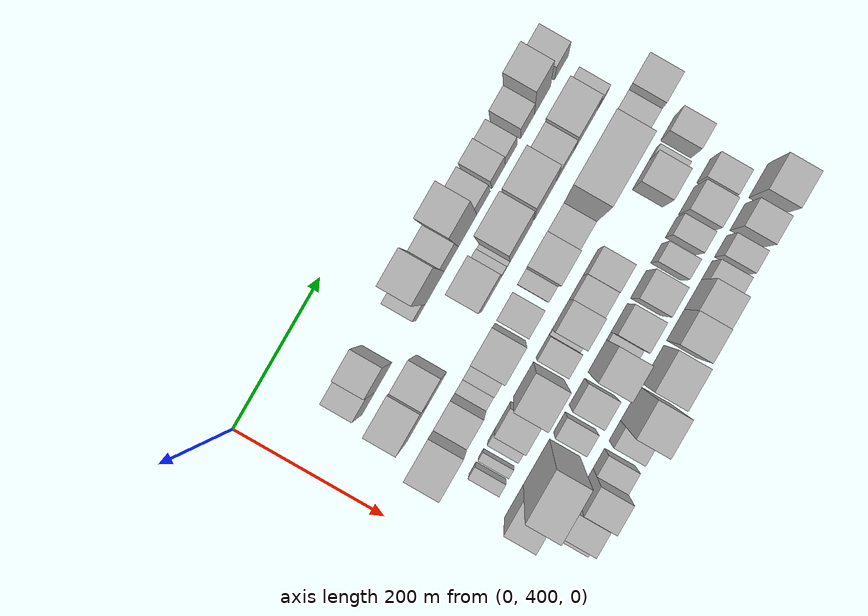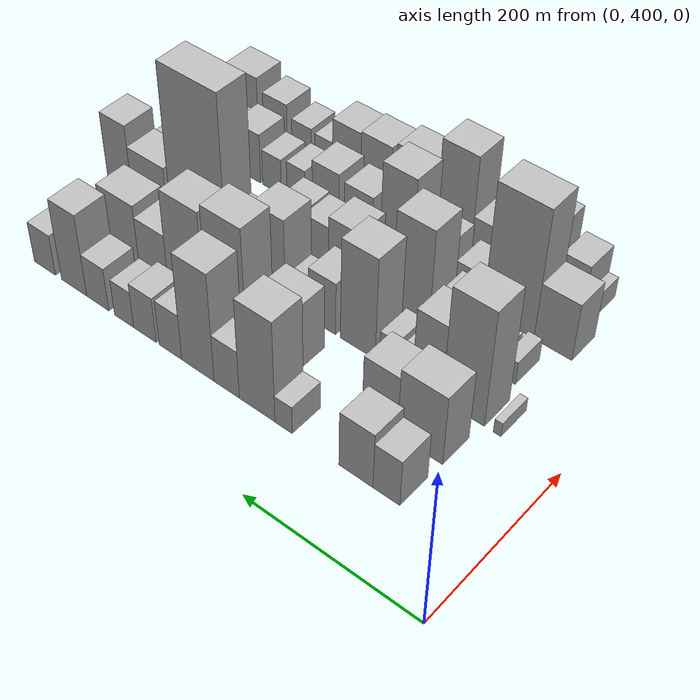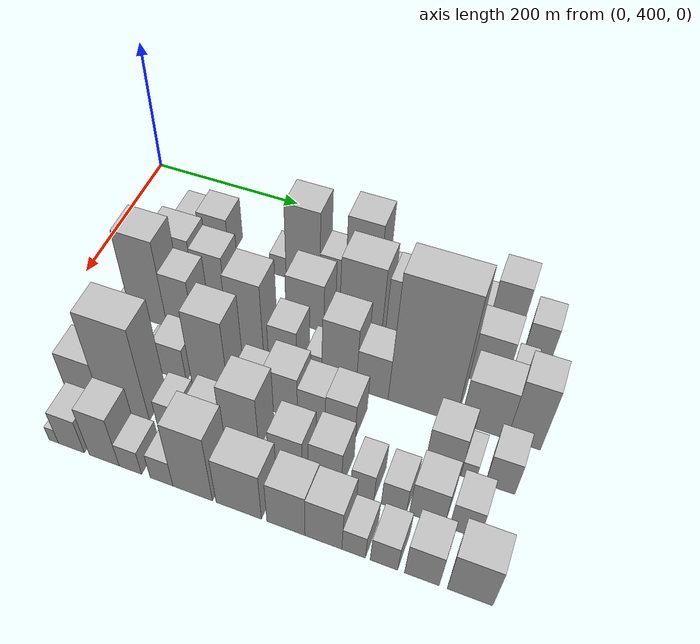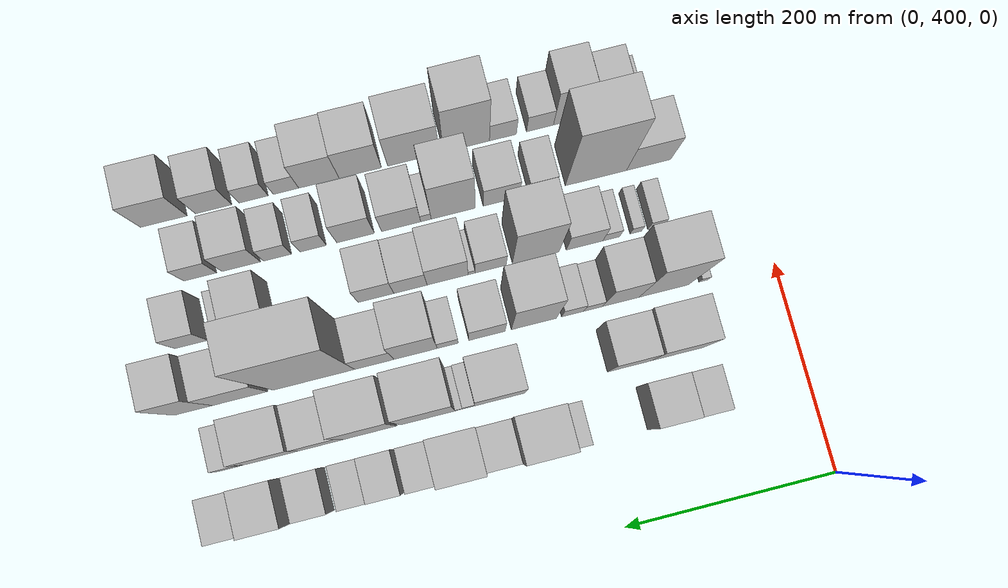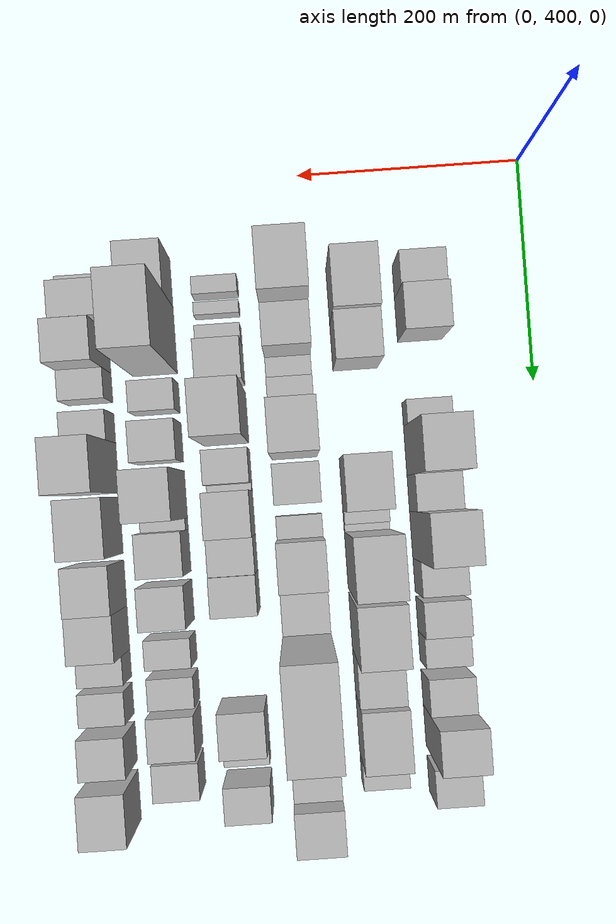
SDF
<sdf version="1.6">
 <world name="default">
  <model name="building_41">
   <static>1</static>
   <pose>100.0000 502.7373 0 0.000000 0.000000 0.000000</pose>
   <link name="link">
    <pose>0 0 30.00 0 0 0</pose>
    <collision name="collision"><geometry><box><size>40.0000 30.0292 60.0000</size></box></geometry></collision>
    <visual name="visual">
     <cast_shadows>0</cast_shadows>
     <geometry><box><size>40.0000 30.0292 60.0000</size></box></geometry>
     <material>
      <script>
       <uri>model://HANNAS_wall/materials/scripts</uri>
       <uri>model://HANNAS_wall/materials/textures</uri>
       <name>vrc/HANNAS_wall</name>
      </script>
     </material>
    </visual>
   </link>
  </model>
  <model name="building_42">
   <static>1</static>
   <pose>100.0000 537.3404 0 0.000000 0.000000 0.000000</pose>
   <link name="link">
    <pose>0 0 36.00 0 0 0</pose>
    <collision name="collision"><geometry><box><size>40.0000 39.1769 72.0000</size></box></geometry></collision>
    <visual name="visual">
     <cast_shadows>0</cast_shadows>
     <geometry><box><size>40.0000 39.1769 72.0000</size></box></geometry>
     <material>
      <script>
       <uri>model://HANNAS_wall/materials/scripts</uri>
       <uri>model://HANNAS_wall/materials/textures</uri>
       <name>vrc/HANNAS_wall</name>
      </script>
     </material>
    </visual>
   </link>
  </model>
  <model name="building_43">
   <static>1</static>
   <pose>100.0000 622.6540 0 0.000000 0.000000 0.000000</pose>
   <link name="link">
    <pose>0 0 18.00 0 0 0</pose>
    <collision name="collision"><geometry><box><size>40.0000 21.1501 36.0000</size></box></geometry></collision>
    <visual name="visual">
     <cast_shadows>0</cast_shadows>
     <geometry><box><size>40.0000 21.1501 36.0000</size></box></geometry>
     <material>
      <script>
       <uri>model://HANNAS_wall/materials/scripts</uri>
       <uri>model://HANNAS_wall/materials/textures</uri>
       <name>vrc/HANNAS_wall</name>
      </script>
     </material>
    </visual>
   </link>
  </model>
  <model name="building_44">
   <static>1</static>
   <pose>100.0000 655.3637 0 0.000000 0.000000 0.000000</pose>
   <link name="link">
    <pose>0 0 66.00 0 0 0</pose>
    <collision name="collision"><geometry><box><size>40.0000 44.2693 132.0000</size></box></geometry></collision>
    <visual name="visual">
     <cast_shadows>0</cast_shadows>
     <geometry><box><size>40.0000 44.2693 132.0000</size></box></geometry>
     <material>
      <script>
       <uri>model://HANNAS_wall/materials/scripts</uri>
       <uri>model://HANNAS_wall/materials/textures</uri>
       <name>vrc/HANNAS_wall</name>
      </script>
     </material>
    </visual>
   </link>
  </model>
  <model name="building_45">
   <static>1</static>
   <pose>100.0000 693.5913 0 0.000000 0.000000 0.000000</pose>
   <link name="link">
    <pose>0 0 31.50 0 0 0</pose>
    <collision name="collision"><geometry><box><size>40.0000 32.1860 63.0000</size></box></geometry></collision>
    <visual name="visual">
     <cast_shadows>0</cast_shadows>
     <geometry><box><size>40.0000 32.1860 63.0000</size></box></geometry>
     <material>
      <script>
       <uri>model://HANNAS_wall/materials/scripts</uri>
       <uri>model://HANNAS_wall/materials/textures</uri>
       <name>vrc/HANNAS_wall</name>
      </script>
     </material>
    </visual>
   </link>
  </model>
  <model name="building_46">
   <static>1</static>
   <pose>100.0000 730.8806 0 0.000000 0.000000 0.000000</pose>
   <link name="link">
    <pose>0 0 70.50 0 0 0</pose>
    <collision name="collision"><geometry><box><size>40.0000 42.3927 141.0000</size></box></geometry></collision>
    <visual name="visual">
     <cast_shadows>0</cast_shadows>
     <geometry><box><size>40.0000 42.3927 141.0000</size></box></geometry>
     <material>
      <script>
       <uri>model://HANNAS_wall/materials/scripts</uri>
       <uri>model://HANNAS_wall/materials/textures</uri>
       <name>vrc/HANNAS_wall</name>
      </script>
     </material>
    </visual>
   </link>
  </model>
  <model name="building_47">
   <static>1</static>
   <pose>100.0000 767.2202 0 0.000000 0.000000 0.000000</pose>
   <link name="link">
    <pose>0 0 30.00 0 0 0</pose>
    <collision name="collision"><geometry><box><size>40.0000 30.2864 60.0000</size></box></geometry></collision>
    <visual name="visual">
     <cast_shadows>0</cast_shadows>
     <geometry><box><size>40.0000 30.2864 60.0000</size></box></geometry>
     <material>
      <script>
       <uri>model://HANNAS_wall/materials/scripts</uri>
       <uri>model://HANNAS_wall/materials/textures</uri>
       <name>vrc/HANNAS_wall</name>
      </script>
     </material>
    </visual>
   </link>
  </model>
  <model name="building_48">
   <static>1</static>
   <pose>100.0000 801.8591 0 0.000000 0.000000 0.000000</pose>
   <link name="link">
    <pose>0 0 30.00 0 0 0</pose>
    <collision name="collision"><geometry><box><size>40.0000 30.9913 60.0000</size></box></geometry></collision>
    <visual name="visual">
     <cast_shadows>0</cast_shadows>
     <geometry><box><size>40.0000 30.9913 60.0000</size></box></geometry>
     <material>
      <script>
       <uri>model://HANNAS_wall/materials/scripts</uri>
       <uri>model://HANNAS_wall/materials/textures</uri>
       <name>vrc/HANNAS_wall</name>
      </script>
     </material>
    </visual>
   </link>
  </model>
  <model name="building_49">
   <static>1</static>
   <pose>100.0000 830.7806 0 0.000000 0.000000 0.000000</pose>
   <link name="link">
    <pose>0 0 24.00 0 0 0</pose>
    <collision name="collision"><geometry><box><size>40.0000 26.8517 48.0000</size></box></geometry></collision>
    <visual name="visual">
     <cast_shadows>0</cast_shadows>
     <geometry><box><size>40.0000 26.8517 48.0000</size></box></geometry>
     <material>
      <script>
       <uri>model://HANNAS_wall/materials/scripts</uri>
       <uri>model://HANNAS_wall/materials/textures</uri>
       <name>vrc/HANNAS_wall</name>
      </script>
     </material>
    </visual>
   </link>
  </model>
  <model name="building_50">
   <static>1</static>
   <pose>100.0000 868.0467 0 0.000000 0.000000 0.000000</pose>
   <link name="link">
    <pose>0 0 28.50 0 0 0</pose>
    <collision name="collision"><geometry><box><size>40.0000 31.6805 57.0000</size></box></geometry></collision>
    <visual name="visual">
     <cast_shadows>0</cast_shadows>
     <geometry><box><size>40.0000 31.6805 57.0000</size></box></geometry>
     <material>
      <script>
       <uri>model://HANNAS_wall/materials/scripts</uri>
       <uri>model://HANNAS_wall/materials/textures</uri>
       <name>vrc/HANNAS_wall</name>
      </script>
     </material>
    </visual>
   </link>
  </model>
  <model name="building_51">
   <static>1</static>
   <pose>100.0000 902.3525 0 0.000000 0.000000 0.000000</pose>
   <link name="link">
    <pose>0 0 54.00 0 0 0</pose>
    <collision name="collision"><geometry><box><size>40.0000 36.9312 108.0000</size></box></geometry></collision>
    <visual name="visual">
     <cast_shadows>0</cast_shadows>
     <geometry><box><size>40.0000 36.9312 108.0000</size></box></geometry>
     <material>
      <script>
       <uri>model://HANNAS_wall/materials/scripts</uri>
       <uri>model://HANNAS_wall/materials/textures</uri>
       <name>vrc/HANNAS_wall</name>
      </script>
     </material>
    </visual>
   </link>
  </model>
  <model name="building_52">
   <static>1</static>
   <pose>100.0000 945.7392 0 0.000000 0.000000 0.000000</pose>
   <link name="link">
    <pose>0 0 27.00 0 0 0</pose>
    <collision name="collision"><geometry><box><size>40.0000 31.8421 54.0000</size></box></geometry></collision>
    <visual name="visual">
     <cast_shadows>0</cast_shadows>
     <geometry><box><size>40.0000 31.8421 54.0000</size></box></geometry>
     <material>
      <script>
       <uri>model://HANNAS_wall/materials/scripts</uri>
       <uri>model://HANNAS_wall/materials/textures</uri>
       <name>vrc/HANNAS_wall</name>
      </script>
     </material>
    </visual>
   </link>
  </model>
  <model name="building_91">
   <static>1</static>
   <pose>160.0000 511.8991 0 0.000000 0.000000 0.000000</pose>
   <link name="link">
    <pose>0 0 45.00 0 0 0</pose>
    <collision name="collision"><geometry><box><size>40.0000 51.1028 90.0000</size></box></geometry></collision>
    <visual name="visual">
     <cast_shadows>0</cast_shadows>
     <geometry><box><size>40.0000 51.1028 90.0000</size></box></geometry>
     <material>
      <script>
       <uri>model://HANNAS_wall/materials/scripts</uri>
       <uri>model://HANNAS_wall/materials/textures</uri>
       <name>vrc/HANNAS_wall</name>
      </script>
     </material>
    </visual>
   </link>
  </model>
  <model name="building_92">
   <static>1</static>
   <pose>160.0000 558.0817 0 0.000000 0.000000 0.000000</pose>
   <link name="link">
    <pose>0 0 39.00 0 0 0</pose>
    <collision name="collision"><geometry><box><size>40.0000 41.2624 78.0000</size></box></geometry></collision>
    <visual name="visual">
     <cast_shadows>0</cast_shadows>
     <geometry><box><size>40.0000 41.2624 78.0000</size></box></geometry>
     <material>
      <script>
       <uri>model://HANNAS_wall/materials/scripts</uri>
       <uri>model://HANNAS_wall/materials/textures</uri>
       <name>vrc/HANNAS_wall</name>
      </script>
     </material>
    </visual>
   </link>
  </model>
  <model name="building_93">
   <static>1</static>
   <pose>160.0000 681.7289 0 0.000000 0.000000 0.000000</pose>
   <link name="link">
    <pose>0 0 42.00 0 0 0</pose>
    <collision name="collision"><geometry><box><size>40.0000 47.3440 84.0000</size></box></geometry></collision>
    <visual name="visual">
     <cast_shadows>0</cast_shadows>
     <geometry><box><size>40.0000 47.3440 84.0000</size></box></geometry>
     <material>
      <script>
       <uri>model://HANNAS_wall/materials/scripts</uri>
       <uri>model://HANNAS_wall/materials/textures</uri>
       <name>vrc/HANNAS_wall</name>
      </script>
     </material>
    </visual>
   </link>
  </model>
  <model name="building_94">
   <static>1</static>
   <pose>160.0000 711.2848 0 0.000000 0.000000 0.000000</pose>
   <link name="link">
    <pose>0 0 12.00 0 0 0</pose>
    <collision name="collision"><geometry><box><size>40.0000 11.7679 24.0000</size></box></geometry></collision>
    <visual name="visual">
     <cast_shadows>0</cast_shadows>
     <geometry><box><size>40.0000 11.7679 24.0000</size></box></geometry>
     <material>
      <script>
       <uri>model://HANNAS_wall/materials/scripts</uri>
       <uri>model://HANNAS_wall/materials/textures</uri>
       <name>vrc/HANNAS_wall</name>
      </script>
     </material>
    </visual>
   </link>
  </model>
  <model name="building_95">
   <static>1</static>
   <pose>160.0000 720.5890 0 0.000000 0.000000 0.000000</pose>
   <link name="link">
    <pose>0 0 7.50 0 0 0</pose>
    <collision name="collision"><geometry><box><size>40.0000 6.8404 15.0000</size></box></geometry></collision>
    <visual name="visual">
     <cast_shadows>0</cast_shadows>
     <geometry><box><size>40.0000 6.8404 15.0000</size></box></geometry>
     <material>
      <script>
       <uri>model://HANNAS_wall/materials/scripts</uri>
       <uri>model://HANNAS_wall/materials/textures</uri>
       <name>vrc/HANNAS_wall</name>
      </script>
     </material>
    </visual>
   </link>
  </model>
  <model name="building_96">
   <static>1</static>
   <pose>160.0000 749.4147 0 0.000000 0.000000 0.000000</pose>
   <link name="link">
    <pose>0 0 72.00 0 0 0</pose>
    <collision name="collision"><geometry><box><size>40.0000 50.8111 144.0000</size></box></geometry></collision>
    <visual name="visual">
     <cast_shadows>0</cast_shadows>
     <geometry><box><size>40.0000 50.8111 144.0000</size></box></geometry>
     <material>
      <script>
       <uri>model://HANNAS_wall/materials/scripts</uri>
       <uri>model://HANNAS_wall/materials/textures</uri>
       <name>vrc/HANNAS_wall</name>
      </script>
     </material>
    </visual>
   </link>
  </model>
  <model name="building_97">
   <static>1</static>
   <pose>160.0000 803.7815 0 0.000000 0.000000 0.000000</pose>
   <link name="link">
    <pose>0 0 66.00 0 0 0</pose>
    <collision name="collision"><geometry><box><size>40.0000 49.9226 132.0000</size></box></geometry></collision>
    <visual name="visual">
     <cast_shadows>0</cast_shadows>
     <geometry><box><size>40.0000 49.9226 132.0000</size></box></geometry>
     <material>
      <script>
       <uri>model://HANNAS_wall/materials/scripts</uri>
       <uri>model://HANNAS_wall/materials/textures</uri>
       <name>vrc/HANNAS_wall</name>
      </script>
     </material>
    </visual>
   </link>
  </model>
  <model name="building_98">
   <static>1</static>
   <pose>160.0000 849.2583 0 0.000000 0.000000 0.000000</pose>
   <link name="link">
    <pose>0 0 36.00 0 0 0</pose>
    <collision name="collision"><geometry><box><size>40.0000 41.0309 72.0000</size></box></geometry></collision>
    <visual name="visual">
     <cast_shadows>0</cast_shadows>
     <geometry><box><size>40.0000 41.0309 72.0000</size></box></geometry>
     <material>
      <script>
       <uri>model://HANNAS_wall/materials/scripts</uri>
       <uri>model://HANNAS_wall/materials/textures</uri>
       <name>vrc/HANNAS_wall</name>
      </script>
     </material>
    </visual>
   </link>
  </model>
  <model name="building_99">
   <static>1</static>
   <pose>160.0000 895.5063 0 0.000000 0.000000 0.000000</pose>
   <link name="link">
    <pose>0 0 43.50 0 0 0</pose>
    <collision name="collision"><geometry><box><size>40.0000 51.4651 87.0000</size></box></geometry></collision>
    <visual name="visual">
     <cast_shadows>0</cast_shadows>
     <geometry><box><size>40.0000 51.4651 87.0000</size></box></geometry>
     <material>
      <script>
       <uri>model://HANNAS_wall/materials/scripts</uri>
       <uri>model://HANNAS_wall/materials/textures</uri>
       <name>vrc/HANNAS_wall</name>
      </script>
     </material>
    </visual>
   </link>
  </model>
  <model name="building_100">
   <static>1</static>
   <pose>160.0000 935.5492 0 0.000000 0.000000 0.000000</pose>
   <link name="link">
    <pose>0 0 19.50 0 0 0</pose>
    <collision name="collision"><geometry><box><size>40.0000 22.6207 39.0000</size></box></geometry></collision>
    <visual name="visual">
     <cast_shadows>0</cast_shadows>
     <geometry><box><size>40.0000 22.6207 39.0000</size></box></geometry>
     <material>
      <script>
       <uri>model://HANNAS_wall/materials/scripts</uri>
       <uri>model://HANNAS_wall/materials/textures</uri>
       <name>vrc/HANNAS_wall</name>
      </script>
     </material>
    </visual>
   </link>
  </model>
  <model name="building_131">
   <static>1</static>
   <pose>220.0000 469.3187 0 0.000000 0.000000 0.000000</pose>
   <link name="link">
    <pose>0 0 9.00 0 0 0</pose>
    <collision name="collision"><geometry><box><size>40.0000 8.6902 18.0000</size></box></geometry></collision>
    <visual name="visual">
     <cast_shadows>0</cast_shadows>
     <geometry><box><size>40.0000 8.6902 18.0000</size></box></geometry>
     <material>
      <script>
       <uri>model://HANNAS_wall/materials/scripts</uri>
       <uri>model://HANNAS_wall/materials/textures</uri>
       <name>vrc/HANNAS_wall</name>
      </script>
     </material>
    </visual>
   </link>
  </model>
  <model name="building_132">
   <static>1</static>
   <pose>220.0000 507.6640 0 0.000000 0.000000 0.000000</pose>
   <link name="link">
    <pose>0 0 75.00 0 0 0</pose>
    <collision name="collision"><geometry><box><size>40.0000 48.0005 150.0000</size></box></geometry></collision>
    <visual name="visual">
     <cast_shadows>0</cast_shadows>
     <geometry><box><size>40.0000 48.0005 150.0000</size></box></geometry>
     <material>
      <script>
       <uri>model://HANNAS_wall/materials/scripts</uri>
       <uri>model://HANNAS_wall/materials/textures</uri>
       <name>vrc/HANNAS_wall</name>
      </script>
     </material>
    </visual>
   </link>
  </model>
  <model name="building_133">
   <static>1</static>
   <pose>220.0000 549.2574 0 0.000000 0.000000 0.000000</pose>
   <link name="link">
    <pose>0 0 49.50 0 0 0</pose>
    <collision name="collision"><geometry><box><size>40.0000 35.1864 99.0000</size></box></geometry></collision>
    <visual name="visual">
     <cast_shadows>0</cast_shadows>
     <geometry><box><size>40.0000 35.1864 99.0000</size></box></geometry>
     <material>
      <script>
       <uri>model://HANNAS_wall/materials/scripts</uri>
       <uri>model://HANNAS_wall/materials/textures</uri>
       <name>vrc/HANNAS_wall</name>
      </script>
     </material>
    </visual>
   </link>
  </model>
  <model name="building_134">
   <static>1</static>
   <pose>220.0000 576.0429 0 0.000000 0.000000 0.000000</pose>
   <link name="link">
    <pose>0 0 16.50 0 0 0</pose>
    <collision name="collision"><geometry><box><size>40.0000 18.3845 33.0000</size></box></geometry></collision>
    <visual name="visual">
     <cast_shadows>0</cast_shadows>
     <geometry><box><size>40.0000 18.3845 33.0000</size></box></geometry>
     <material>
      <script>
       <uri>model://HANNAS_wall/materials/scripts</uri>
       <uri>model://HANNAS_wall/materials/textures</uri>
       <name>vrc/HANNAS_wall</name>
      </script>
     </material>
    </visual>
   </link>
  </model>
  <model name="building_135">
   <static>1</static>
   <pose>220.0000 595.9459 0 0.000000 0.000000 0.000000</pose>
   <link name="link">
    <pose>0 0 21.00 0 0 0</pose>
    <collision name="collision"><geometry><box><size>40.0000 21.4215 42.0000</size></box></geometry></collision>
    <visual name="visual">
     <cast_shadows>0</cast_shadows>
     <geometry><box><size>40.0000 21.4215 42.0000</size></box></geometry>
     <material>
      <script>
       <uri>model://HANNAS_wall/materials/scripts</uri>
       <uri>model://HANNAS_wall/materials/textures</uri>
       <name>vrc/HANNAS_wall</name>
      </script>
     </material>
    </visual>
   </link>
  </model>
  <model name="building_136">
   <static>1</static>
   <pose>220.0000 633.3395 0 0.000000 0.000000 0.000000</pose>
   <link name="link">
    <pose>0 0 66.00 0 0 0</pose>
    <collision name="collision"><geometry><box><size>40.0000 43.3658 132.0000</size></box></geometry></collision>
    <visual name="visual">
     <cast_shadows>0</cast_shadows>
     <geometry><box><size>40.0000 43.3658 132.0000</size></box></geometry>
     <material>
      <script>
       <uri>model://HANNAS_wall/materials/scripts</uri>
       <uri>model://HANNAS_wall/materials/textures</uri>
       <name>vrc/HANNAS_wall</name>
      </script>
     </material>
    </visual>
   </link>
  </model>
  <model name="building_137">
   <static>1</static>
   <pose>220.0000 678.3515 0 0.000000 0.000000 0.000000</pose>
   <link name="link">
    <pose>0 0 34.50 0 0 0</pose>
    <collision name="collision"><geometry><box><size>40.0000 34.6582 69.0000</size></box></geometry></collision>
    <visual name="visual">
     <cast_shadows>0</cast_shadows>
     <geometry><box><size>40.0000 34.6582 69.0000</size></box></geometry>
     <material>
      <script>
       <uri>model://HANNAS_wall/materials/scripts</uri>
       <uri>model://HANNAS_wall/materials/textures</uri>
       <name>vrc/HANNAS_wall</name>
      </script>
     </material>
    </visual>
   </link>
  </model>
  <model name="building_138">
   <static>1</static>
   <pose>220.0000 715.7177 0 0.000000 0.000000 0.000000</pose>
   <link name="link">
    <pose>0 0 19.50 0 0 0</pose>
    <collision name="collision"><geometry><box><size>40.0000 20.0742 39.0000</size></box></geometry></collision>
    <visual name="visual">
     <cast_shadows>0</cast_shadows>
     <geometry><box><size>40.0000 20.0742 39.0000</size></box></geometry>
     <material>
      <script>
       <uri>model://HANNAS_wall/materials/scripts</uri>
       <uri>model://HANNAS_wall/materials/textures</uri>
       <name>vrc/HANNAS_wall</name>
      </script>
     </material>
    </visual>
   </link>
  </model>
  <model name="building_139">
   <static>1</static>
   <pose>220.0000 746.3385 0 0.000000 0.000000 0.000000</pose>
   <link name="link">
    <pose>0 0 55.50 0 0 0</pose>
    <collision name="collision"><geometry><box><size>40.0000 41.1674 111.0000</size></box></geometry></collision>
    <visual name="visual">
     <cast_shadows>0</cast_shadows>
     <geometry><box><size>40.0000 41.1674 111.0000</size></box></geometry>
     <material>
      <script>
       <uri>model://HANNAS_wall/materials/scripts</uri>
       <uri>model://HANNAS_wall/materials/textures</uri>
       <name>vrc/HANNAS_wall</name>
      </script>
     </material>
    </visual>
   </link>
  </model>
  <model name="building_140">
   <static>1</static>
   <pose>220.0000 785.6887 0 0.000000 0.000000 0.000000</pose>
   <link name="link">
    <pose>0 0 37.50 0 0 0</pose>
    <collision name="collision"><geometry><box><size>40.0000 37.5330 75.0000</size></box></geometry></collision>
    <visual name="visual">
     <cast_shadows>0</cast_shadows>
     <geometry><box><size>40.0000 37.5330 75.0000</size></box></geometry>
     <material>
      <script>
       <uri>model://HANNAS_wall/materials/scripts</uri>
       <uri>model://HANNAS_wall/materials/textures</uri>
       <name>vrc/HANNAS_wall</name>
      </script>
     </material>
    </visual>
   </link>
  </model>
  <model name="building_141">
   <static>1</static>
   <pose>220.0000 843.1752 0 0.000000 0.000000 0.000000</pose>
   <link name="link">
    <pose>0 0 111.00 0 0 0</pose>
    <collision name="collision"><geometry><box><size>40.0000 77.4400 222.0000</size></box></geometry></collision>
    <visual name="visual">
     <cast_shadows>0</cast_shadows>
     <geometry><box><size>40.0000 77.4400 222.0000</size></box></geometry>
     <material>
      <script>
       <uri>model://HANNAS_wall/materials/scripts</uri>
       <uri>model://HANNAS_wall/materials/textures</uri>
       <name>vrc/HANNAS_wall</name>
      </script>
     </material>
    </visual>
   </link>
  </model>
  <model name="building_142">
   <static>1</static>
   <pose>220.0000 912.9480 0 0.000000 0.000000 0.000000</pose>
   <link name="link">
    <pose>0 0 43.50 0 0 0</pose>
    <collision name="collision"><geometry><box><size>40.0000 52.1058 87.0000</size></box></geometry></collision>
    <visual name="visual">
     <cast_shadows>0</cast_shadows>
     <geometry><box><size>40.0000 52.1058 87.0000</size></box></geometry>
     <material>
      <script>
       <uri>model://HANNAS_wall/materials/scripts</uri>
       <uri>model://HANNAS_wall/materials/textures</uri>
       <name>vrc/HANNAS_wall</name>
      </script>
     </material>
    </visual>
   </link>
  </model>
  <model name="building_143">
   <static>1</static>
   <pose>220.0000 957.0770 0 0.000000 0.000000 0.000000</pose>
   <link name="link">
    <pose>0 0 57.00 0 0 0</pose>
    <collision name="collision"><geometry><box><size>40.0000 36.1521 114.0000</size></box></geometry></collision>
    <visual name="visual">
     <cast_shadows>0</cast_shadows>
     <geometry><box><size>40.0000 36.1521 114.0000</size></box></geometry>
     <material>
      <script>
       <uri>model://HANNAS_wall/materials/scripts</uri>
       <uri>model://HANNAS_wall/materials/textures</uri>
       <name>vrc/HANNAS_wall</name>
      </script>
     </material>
    </visual>
   </link>
  </model>
  <model name="building_178">
   <static>1</static>
   <pose>280.0000 498.8611 0 0.000000 0.000000 0.000000</pose>
   <link name="link">
    <pose>0 0 15.00 0 0 0</pose>
    <collision name="collision"><geometry><box><size>40.0000 15.5639 30.0000</size></box></geometry></collision>
    <visual name="visual">
     <cast_shadows>0</cast_shadows>
     <geometry><box><size>40.0000 15.5639 30.0000</size></box></geometry>
     <material>
      <script>
       <uri>model://HANNAS_wall/materials/scripts</uri>
       <uri>model://HANNAS_wall/materials/textures</uri>
       <name>vrc/HANNAS_wall</name>
      </script>
     </material>
    </visual>
   </link>
  </model>
  <model name="building_179">
   <static>1</static>
   <pose>280.0000 518.3049 0 0.000000 0.000000 0.000000</pose>
   <link name="link">
    <pose>0 0 12.00 0 0 0</pose>
    <collision name="collision"><geometry><box><size>40.0000 11.3236 24.0000</size></box></geometry></collision>
    <visual name="visual">
     <cast_shadows>0</cast_shadows>
     <geometry><box><size>40.0000 11.3236 24.0000</size></box></geometry>
     <material>
      <script>
       <uri>model://HANNAS_wall/materials/scripts</uri>
       <uri>model://HANNAS_wall/materials/textures</uri>
       <name>vrc/HANNAS_wall</name>
      </script>
     </material>
    </visual>
   </link>
  </model>
  <model name="building_180">
   <static>1</static>
   <pose>280.0000 542.2198 0 0.000000 0.000000 0.000000</pose>
   <link name="link">
    <pose>0 0 15.00 0 0 0</pose>
    <collision name="collision"><geometry><box><size>40.0000 16.5061 30.0000</size></box></geometry></collision>
    <visual name="visual">
     <cast_shadows>0</cast_shadows>
     <geometry><box><size>40.0000 16.5061 30.0000</size></box></geometry>
     <material>
      <script>
       <uri>model://HANNAS_wall/materials/scripts</uri>
       <uri>model://HANNAS_wall/materials/textures</uri>
       <name>vrc/HANNAS_wall</name>
      </script>
     </material>
    </visual>
   </link>
  </model>
  <model name="building_181">
   <static>1</static>
   <pose>280.0000 568.3164 0 0.000000 0.000000 0.000000</pose>
   <link name="link">
    <pose>0 0 30.00 0 0 0</pose>
    <collision name="collision"><geometry><box><size>40.0000 35.6872 60.0000</size></box></geometry></collision>
    <visual name="visual">
     <cast_shadows>0</cast_shadows>
     <geometry><box><size>40.0000 35.6872 60.0000</size></box></geometry>
     <material>
      <script>
       <uri>model://HANNAS_wall/materials/scripts</uri>
       <uri>model://HANNAS_wall/materials/textures</uri>
       <name>vrc/HANNAS_wall</name>
      </script>
     </material>
    </visual>
   </link>
  </model>
  <model name="building_182">
   <static>1</static>
   <pose>280.0000 615.7771 0 0.000000 0.000000 0.000000</pose>
   <link name="link">
    <pose>0 0 67.50 0 0 0</pose>
    <collision name="collision"><geometry><box><size>40.0000 45.2342 135.0000</size></box></geometry></collision>
    <visual name="visual">
     <cast_shadows>0</cast_shadows>
     <geometry><box><size>40.0000 45.2342 135.0000</size></box></geometry>
     <material>
      <script>
       <uri>model://HANNAS_wall/materials/scripts</uri>
       <uri>model://HANNAS_wall/materials/textures</uri>
       <name>vrc/HANNAS_wall</name>
      </script>
     </material>
    </visual>
   </link>
  </model>
  <model name="building_183">
   <static>1</static>
   <pose>280.0000 659.4572 0 0.000000 0.000000 0.000000</pose>
   <link name="link">
    <pose>0 0 25.50 0 0 0</pose>
    <collision name="collision"><geometry><box><size>40.0000 30.1260 51.0000</size></box></geometry></collision>
    <visual name="visual">
     <cast_shadows>0</cast_shadows>
     <geometry><box><size>40.0000 30.1260 51.0000</size></box></geometry>
     <material>
      <script>
       <uri>model://HANNAS_wall/materials/scripts</uri>
       <uri>model://HANNAS_wall/materials/textures</uri>
       <name>vrc/HANNAS_wall</name>
      </script>
     </material>
    </visual>
   </link>
  </model>
  <model name="building_184">
   <static>1</static>
   <pose>280.0000 677.9129 0 0.000000 0.000000 0.000000</pose>
   <link name="link">
    <pose>0 0 7.50 0 0 0</pose>
    <collision name="collision"><geometry><box><size>40.0000 6.7854 15.0000</size></box></geometry></collision>
    <visual name="visual">
     <cast_shadows>0</cast_shadows>
     <geometry><box><size>40.0000 6.7854 15.0000</size></box></geometry>
     <material>
      <script>
       <uri>model://HANNAS_wall/materials/scripts</uri>
       <uri>model://HANNAS_wall/materials/textures</uri>
       <name>vrc/HANNAS_wall</name>
      </script>
     </material>
    </visual>
   </link>
  </model>
  <model name="building_185">
   <static>1</static>
   <pose>280.0000 700.9956 0 0.000000 0.000000 0.000000</pose>
   <link name="link">
    <pose>0 0 39.00 0 0 0</pose>
    <collision name="collision"><geometry><box><size>40.0000 39.3800 78.0000</size></box></geometry></collision>
    <visual name="visual">
     <cast_shadows>0</cast_shadows>
     <geometry><box><size>40.0000 39.3800 78.0000</size></box></geometry>
     <material>
      <script>
       <uri>model://HANNAS_wall/materials/scripts</uri>
       <uri>model://HANNAS_wall/materials/textures</uri>
       <name>vrc/HANNAS_wall</name>
      </script>
     </material>
    </visual>
   </link>
  </model>
  <model name="building_186">
   <static>1</static>
   <pose>280.0000 736.6223 0 0.000000 0.000000 0.000000</pose>
   <link name="link">
    <pose>0 0 31.50 0 0 0</pose>
    <collision name="collision"><geometry><box><size>40.0000 31.8733 63.0000</size></box></geometry></collision>
    <visual name="visual">
     <cast_shadows>0</cast_shadows>
     <geometry><box><size>40.0000 31.8733 63.0000</size></box></geometry>
     <material>
      <script>
       <uri>model://HANNAS_wall/materials/scripts</uri>
       <uri>model://HANNAS_wall/materials/textures</uri>
       <name>vrc/HANNAS_wall</name>
      </script>
     </material>
    </visual>
   </link>
  </model>
  <model name="building_187">
   <static>1</static>
   <pose>280.0000 769.7585 0 0.000000 0.000000 0.000000</pose>
   <link name="link">
    <pose>0 0 33.00 0 0 0</pose>
    <collision name="collision"><geometry><box><size>40.0000 34.3990 66.0000</size></box></geometry></collision>
    <visual name="visual">
     <cast_shadows>0</cast_shadows>
     <geometry><box><size>40.0000 34.3990 66.0000</size></box></geometry>
     <material>
      <script>
       <uri>model://HANNAS_wall/materials/scripts</uri>
       <uri>model://HANNAS_wall/materials/textures</uri>
       <name>vrc/HANNAS_wall</name>
      </script>
     </material>
    </visual>
   </link>
  </model>
  <model name="building_188">
   <static>1</static>
   <pose>280.0000 884.9484 0 0.000000 0.000000 0.000000</pose>
   <link name="link">
    <pose>0 0 36.00 0 0 0</pose>
    <collision name="collision"><geometry><box><size>40.0000 38.6603 72.0000</size></box></geometry></collision>
    <visual name="visual">
     <cast_shadows>0</cast_shadows>
     <geometry><box><size>40.0000 38.6603 72.0000</size></box></geometry>
     <material>
      <script>
       <uri>model://HANNAS_wall/materials/scripts</uri>
       <uri>model://HANNAS_wall/materials/textures</uri>
       <name>vrc/HANNAS_wall</name>
      </script>
     </material>
    </visual>
   </link>
  </model>
  <model name="building_189">
   <static>1</static>
   <pose>280.0000 912.3761 0 0.000000 0.000000 0.000000</pose>
   <link name="link">
    <pose>0 0 15.00 0 0 0</pose>
    <collision name="collision"><geometry><box><size>40.0000 16.1952 30.0000</size></box></geometry></collision>
    <visual name="visual">
     <cast_shadows>0</cast_shadows>
     <geometry><box><size>40.0000 16.1952 30.0000</size></box></geometry>
     <material>
      <script>
       <uri>model://HANNAS_wall/materials/scripts</uri>
       <uri>model://HANNAS_wall/materials/textures</uri>
       <name>vrc/HANNAS_wall</name>
      </script>
     </material>
    </visual>
   </link>
  </model>
  <model name="building_190">
   <static>1</static>
   <pose>280.0000 946.1154 0 0.000000 0.000000 0.000000</pose>
   <link name="link">
    <pose>0 0 30.00 0 0 0</pose>
    <collision name="collision"><geometry><box><size>40.0000 31.2834 60.0000</size></box></geometry></collision>
    <visual name="visual">
     <cast_shadows>0</cast_shadows>
     <geometry><box><size>40.0000 31.2834 60.0000</size></box></geometry>
     <material>
      <script>
       <uri>model://HANNAS_wall/materials/scripts</uri>
       <uri>model://HANNAS_wall/materials/textures</uri>
       <name>vrc/HANNAS_wall</name>
      </script>
     </material>
    </visual>
   </link>
  </model>
  <model name="building_227">
   <static>1</static>
   <pose>340.0000 489.0872 0 0.000000 0.000000 0.000000</pose>
   <link name="link">
    <pose>0 0 37.50 0 0 0</pose>
    <collision name="collision"><geometry><box><size>40.0000 43.5416 75.0000</size></box></geometry></collision>
    <visual name="visual">
     <cast_shadows>0</cast_shadows>
     <geometry><box><size>40.0000 43.5416 75.0000</size></box></geometry>
     <material>
      <script>
       <uri>model://HANNAS_wall/materials/scripts</uri>
       <uri>model://HANNAS_wall/materials/textures</uri>
       <name>vrc/HANNAS_wall</name>
      </script>
     </material>
    </visual>
   </link>
  </model>
  <model name="building_228">
   <static>1</static>
   <pose>340.0000 540.9880 0 0.000000 0.000000 0.000000</pose>
   <link name="link">
    <pose>0 0 84.00 0 0 0</pose>
    <collision name="collision"><geometry><box><size>40.0000 60.2599 168.0000</size></box></geometry></collision>
    <visual name="visual">
     <cast_shadows>0</cast_shadows>
     <geometry><box><size>40.0000 60.2599 168.0000</size></box></geometry>
     <material>
      <script>
       <uri>model://HANNAS_wall/materials/scripts</uri>
       <uri>model://HANNAS_wall/materials/textures</uri>
       <name>vrc/HANNAS_wall</name>
      </script>
     </material>
    </visual>
   </link>
  </model>
  <model name="building_229">
   <static>1</static>
   <pose>340.0000 593.5793 0 0.000000 0.000000 0.000000</pose>
   <link name="link">
    <pose>0 0 22.50 0 0 0</pose>
    <collision name="collision"><geometry><box><size>40.0000 26.9227 45.0000</size></box></geometry></collision>
    <visual name="visual">
     <cast_shadows>0</cast_shadows>
     <geometry><box><size>40.0000 26.9227 45.0000</size></box></geometry>
     <material>
      <script>
       <uri>model://HANNAS_wall/materials/scripts</uri>
       <uri>model://HANNAS_wall/materials/textures</uri>
       <name>vrc/HANNAS_wall</name>
      </script>
     </material>
    </visual>
   </link>
  </model>
  <model name="building_230">
   <static>1</static>
   <pose>340.0000 633.6682 0 0.000000 0.000000 0.000000</pose>
   <link name="link">
    <pose>0 0 30.00 0 0 0</pose>
    <collision name="collision"><geometry><box><size>40.0000 35.2552 60.0000</size></box></geometry></collision>
    <visual name="visual">
     <cast_shadows>0</cast_shadows>
     <geometry><box><size>40.0000 35.2552 60.0000</size></box></geometry>
     <material>
      <script>
       <uri>model://HANNAS_wall/materials/scripts</uri>
       <uri>model://HANNAS_wall/materials/textures</uri>
       <name>vrc/HANNAS_wall</name>
      </script>
     </material>
    </visual>
   </link>
  </model>
  <model name="building_231">
   <static>1</static>
   <pose>340.0000 680.5703 0 0.000000 0.000000 0.000000</pose>
   <link name="link">
    <pose>0 0 60.00 0 0 0</pose>
    <collision name="collision"><geometry><box><size>40.0000 42.5490 120.0000</size></box></geometry></collision>
    <visual name="visual">
     <cast_shadows>0</cast_shadows>
     <geometry><box><size>40.0000 42.5490 120.0000</size></box></geometry>
     <material>
      <script>
       <uri>model://HANNAS_wall/materials/scripts</uri>
       <uri>model://HANNAS_wall/materials/textures</uri>
       <name>vrc/HANNAS_wall</name>
      </script>
     </material>
    </visual>
   </link>
  </model>
  <model name="building_232">
   <static>1</static>
   <pose>340.0000 706.9604 0 0.000000 0.000000 0.000000</pose>
   <link name="link">
    <pose>0 0 12.00 0 0 0</pose>
    <collision name="collision"><geometry><box><size>40.0000 10.2312 24.0000</size></box></geometry></collision>
    <visual name="visual">
     <cast_shadows>0</cast_shadows>
     <geometry><box><size>40.0000 10.2312 24.0000</size></box></geometry>
     <material>
      <script>
       <uri>model://HANNAS_wall/materials/scripts</uri>
       <uri>model://HANNAS_wall/materials/textures</uri>
       <name>vrc/HANNAS_wall</name>
      </script>
     </material>
    </visual>
   </link>
  </model>
  <model name="building_233">
   <static>1</static>
   <pose>340.0000 730.9810 0 0.000000 0.000000 0.000000</pose>
   <link name="link">
    <pose>0 0 33.00 0 0 0</pose>
    <collision name="collision"><geometry><box><size>40.0000 37.8099 66.0000</size></box></geometry></collision>
    <visual name="visual">
     <cast_shadows>0</cast_shadows>
     <geometry><box><size>40.0000 37.8099 66.0000</size></box></geometry>
     <material>
      <script>
       <uri>model://HANNAS_wall/materials/scripts</uri>
       <uri>model://HANNAS_wall/materials/textures</uri>
       <name>vrc/HANNAS_wall</name>
      </script>
     </material>
    </visual>
   </link>
  </model>
  <model name="building_234">
   <static>1</static>
   <pose>340.0000 775.1092 0 0.000000 0.000000 0.000000</pose>
   <link name="link">
    <pose>0 0 36.00 0 0 0</pose>
    <collision name="collision"><geometry><box><size>40.0000 36.4464 72.0000</size></box></geometry></collision>
    <visual name="visual">
     <cast_shadows>0</cast_shadows>
     <geometry><box><size>40.0000 36.4464 72.0000</size></box></geometry>
     <material>
      <script>
       <uri>model://HANNAS_wall/materials/scripts</uri>
       <uri>model://HANNAS_wall/materials/textures</uri>
       <name>vrc/HANNAS_wall</name>
      </script>
     </material>
    </visual>
   </link>
  </model>
  <model name="building_235">
   <static>1</static>
   <pose>340.0000 816.1201 0 0.000000 0.000000 0.000000</pose>
   <link name="link">
    <pose>0 0 25.50 0 0 0</pose>
    <collision name="collision"><geometry><box><size>40.0000 25.5755 51.0000</size></box></geometry></collision>
    <visual name="visual">
     <cast_shadows>0</cast_shadows>
     <geometry><box><size>40.0000 25.5755 51.0000</size></box></geometry>
     <material>
      <script>
       <uri>model://HANNAS_wall/materials/scripts</uri>
       <uri>model://HANNAS_wall/materials/textures</uri>
       <name>vrc/HANNAS_wall</name>
      </script>
     </material>
    </visual>
   </link>
  </model>
  <model name="building_236">
   <static>1</static>
   <pose>340.0000 850.4007 0 0.000000 0.000000 0.000000</pose>
   <link name="link">
    <pose>0 0 24.00 0 0 0</pose>
    <collision name="collision"><geometry><box><size>40.0000 26.9855 48.0000</size></box></geometry></collision>
    <visual name="visual">
     <cast_shadows>0</cast_shadows>
     <geometry><box><size>40.0000 26.9855 48.0000</size></box></geometry>
     <material>
      <script>
       <uri>model://HANNAS_wall/materials/scripts</uri>
       <uri>model://HANNAS_wall/materials/textures</uri>
       <name>vrc/HANNAS_wall</name>
      </script>
     </material>
    </visual>
   </link>
  </model>
  <model name="building_237">
   <static>1</static>
   <pose>340.0000 885.4233 0 0.000000 0.000000 0.000000</pose>
   <link name="link">
    <pose>0 0 33.00 0 0 0</pose>
    <collision name="collision"><geometry><box><size>40.0000 37.0598 66.0000</size></box></geometry></collision>
    <visual name="visual">
     <cast_shadows>0</cast_shadows>
     <geometry><box><size>40.0000 37.0598 66.0000</size></box></geometry>
     <material>
      <script>
       <uri>model://HANNAS_wall/materials/scripts</uri>
       <uri>model://HANNAS_wall/materials/textures</uri>
       <name>vrc/HANNAS_wall</name>
      </script>
     </material>
    </visual>
   </link>
  </model>
  <model name="building_238">
   <static>1</static>
   <pose>340.0000 924.6967 0 0.000000 0.000000 0.000000</pose>
   <link name="link">
    <pose>0 0 27.00 0 0 0</pose>
    <collision name="collision"><geometry><box><size>40.0000 31.4869 54.0000</size></box></geometry></collision>
    <visual name="visual">
     <cast_shadows>0</cast_shadows>
     <geometry><box><size>40.0000 31.4869 54.0000</size></box></geometry>
     <material>
      <script>
       <uri>model://HANNAS_wall/materials/scripts</uri>
       <uri>model://HANNAS_wall/materials/textures</uri>
       <name>vrc/HANNAS_wall</name>
      </script>
     </material>
    </visual>
   </link>
  </model>
  <model name="building_279">
   <static>1</static>
   <pose>400.0000 487.4805 0 0.000000 0.000000 0.000000</pose>
   <link name="link">
    <pose>0 0 13.50 0 0 0</pose>
    <collision name="collision"><geometry><box><size>40.0000 11.4344 27.0000</size></box></geometry></collision>
    <visual name="visual">
     <cast_shadows>0</cast_shadows>
     <geometry><box><size>40.0000 11.4344 27.0000</size></box></geometry>
     <material>
      <script>
       <uri>model://HANNAS_wall/materials/scripts</uri>
       <uri>model://HANNAS_wall/materials/textures</uri>
       <name>vrc/HANNAS_wall</name>
      </script>
     </material>
    </visual>
   </link>
  </model>
  <model name="building_280">
   <static>1</static>
   <pose>400.0000 509.0819 0 0.000000 0.000000 0.000000</pose>
   <link name="link">
    <pose>0 0 31.50 0 0 0</pose>
    <collision name="collision"><geometry><box><size>40.0000 31.7686 63.0000</size></box></geometry></collision>
    <visual name="visual">
     <cast_shadows>0</cast_shadows>
     <geometry><box><size>40.0000 31.7686 63.0000</size></box></geometry>
     <material>
      <script>
       <uri>model://HANNAS_wall/materials/scripts</uri>
       <uri>model://HANNAS_wall/materials/textures</uri>
       <name>vrc/HANNAS_wall</name>
      </script>
     </material>
    </visual>
   </link>
  </model>
  <model name="building_281">
   <static>1</static>
   <pose>400.0000 548.8878 0 0.000000 0.000000 0.000000</pose>
   <link name="link">
    <pose>0 0 46.50 0 0 0</pose>
    <collision name="collision"><geometry><box><size>40.0000 35.8431 93.0000</size></box></geometry></collision>
    <visual name="visual">
     <cast_shadows>0</cast_shadows>
     <geometry><box><size>40.0000 35.8431 93.0000</size></box></geometry>
     <material>
      <script>
       <uri>model://HANNAS_wall/materials/scripts</uri>
       <uri>model://HANNAS_wall/materials/textures</uri>
       <name>vrc/HANNAS_wall</name>
      </script>
     </material>
    </visual>
   </link>
  </model>
  <model name="building_282">
   <static>1</static>
   <pose>400.0000 580.0730 0 0.000000 0.000000 0.000000</pose>
   <link name="link">
    <pose>0 0 22.50 0 0 0</pose>
    <collision name="collision"><geometry><box><size>40.0000 26.5272 45.0000</size></box></geometry></collision>
    <visual name="visual">
     <cast_shadows>0</cast_shadows>
     <geometry><box><size>40.0000 26.5272 45.0000</size></box></geometry>
     <material>
      <script>
       <uri>model://HANNAS_wall/materials/scripts</uri>
       <uri>model://HANNAS_wall/materials/textures</uri>
       <name>vrc/HANNAS_wall</name>
      </script>
     </material>
    </visual>
   </link>
  </model>
  <model name="building_283">
   <static>1</static>
   <pose>400.0000 616.5958 0 0.000000 0.000000 0.000000</pose>
   <link name="link">
    <pose>0 0 24.00 0 0 0</pose>
    <collision name="collision"><geometry><box><size>40.0000 26.5185 48.0000</size></box></geometry></collision>
    <visual name="visual">
     <cast_shadows>0</cast_shadows>
     <geometry><box><size>40.0000 26.5185 48.0000</size></box></geometry>
     <material>
      <script>
       <uri>model://HANNAS_wall/materials/scripts</uri>
       <uri>model://HANNAS_wall/materials/textures</uri>
       <name>vrc/HANNAS_wall</name>
      </script>
     </material>
    </visual>
   </link>
  </model>
  <model name="building_284">
   <static>1</static>
   <pose>400.0000 652.4495 0 0.000000 0.000000 0.000000</pose>
   <link name="link">
    <pose>0 0 63.00 0 0 0</pose>
    <collision name="collision"><geometry><box><size>40.0000 45.1889 126.0000</size></box></geometry></collision>
    <visual name="visual">
     <cast_shadows>0</cast_shadows>
     <geometry><box><size>40.0000 45.1889 126.0000</size></box></geometry>
     <material>
      <script>
       <uri>model://HANNAS_wall/materials/scripts</uri>
       <uri>model://HANNAS_wall/materials/textures</uri>
       <name>vrc/HANNAS_wall</name>
      </script>
     </material>
    </visual>
   </link>
  </model>
  <model name="building_285">
   <static>1</static>
   <pose>400.0000 704.3043 0 0.000000 0.000000 0.000000</pose>
   <link name="link">
    <pose>0 0 45.00 0 0 0</pose>
    <collision name="collision"><geometry><box><size>40.0000 50.5208 90.0000</size></box></geometry></collision>
    <visual name="visual">
     <cast_shadows>0</cast_shadows>
     <geometry><box><size>40.0000 50.5208 90.0000</size></box></geometry>
     <material>
      <script>
       <uri>model://HANNAS_wall/materials/scripts</uri>
       <uri>model://HANNAS_wall/materials/textures</uri>
       <name>vrc/HANNAS_wall</name>
      </script>
     </material>
    </visual>
   </link>
  </model>
  <model name="building_286">
   <static>1</static>
   <pose>400.0000 756.2155 0 0.000000 0.000000 0.000000</pose>
   <link name="link">
    <pose>0 0 40.50 0 0 0</pose>
    <collision name="collision"><geometry><box><size>40.0000 41.3016 81.0000</size></box></geometry></collision>
    <visual name="visual">
     <cast_shadows>0</cast_shadows>
     <geometry><box><size>40.0000 41.3016 81.0000</size></box></geometry>
     <material>
      <script>
       <uri>model://HANNAS_wall/materials/scripts</uri>
       <uri>model://HANNAS_wall/materials/textures</uri>
       <name>vrc/HANNAS_wall</name>
      </script>
     </material>
    </visual>
   </link>
  </model>
  <model name="building_287">
   <static>1</static>
   <pose>400.0000 796.4893 0 0.000000 0.000000 0.000000</pose>
   <link name="link">
    <pose>0 0 39.00 0 0 0</pose>
    <collision name="collision"><geometry><box><size>40.0000 39.2459 78.0000</size></box></geometry></collision>
    <visual name="visual">
     <cast_shadows>0</cast_shadows>
     <geometry><box><size>40.0000 39.2459 78.0000</size></box></geometry>
     <material>
      <script>
       <uri>model://HANNAS_wall/materials/scripts</uri>
       <uri>model://HANNAS_wall/materials/textures</uri>
       <name>vrc/HANNAS_wall</name>
      </script>
     </material>
    </visual>
   </link>
  </model>
  <model name="building_288">
   <static>1</static>
   <pose>400.0000 828.4387 0 0.000000 0.000000 0.000000</pose>
   <link name="link">
    <pose>0 0 22.50 0 0 0</pose>
    <collision name="collision"><geometry><box><size>40.0000 24.6530 45.0000</size></box></geometry></collision>
    <visual name="visual">
     <cast_shadows>0</cast_shadows>
     <geometry><box><size>40.0000 24.6530 45.0000</size></box></geometry>
     <material>
      <script>
       <uri>model://HANNAS_wall/materials/scripts</uri>
       <uri>model://HANNAS_wall/materials/textures</uri>
       <name>vrc/HANNAS_wall</name>
      </script>
     </material>
    </visual>
   </link>
  </model>
  <model name="building_289">
   <static>1</static>
   <pose>400.0000 859.9303 0 0.000000 0.000000 0.000000</pose>
   <link name="link">
    <pose>0 0 24.00 0 0 0</pose>
    <collision name="collision"><geometry><box><size>40.0000 28.3301 48.0000</size></box></geometry></collision>
    <visual name="visual">
     <cast_shadows>0</cast_shadows>
     <geometry><box><size>40.0000 28.3301 48.0000</size></box></geometry>
     <material>
      <script>
       <uri>model://HANNAS_wall/materials/scripts</uri>
       <uri>model://HANNAS_wall/materials/textures</uri>
       <name>vrc/HANNAS_wall</name>
      </script>
     </material>
    </visual>
   </link>
  </model>
  <model name="building_290">
   <static>1</static>
   <pose>400.0000 898.6343 0 0.000000 0.000000 0.000000</pose>
   <link name="link">
    <pose>0 0 31.50 0 0 0</pose>
    <collision name="collision"><geometry><box><size>40.0000 35.0779 63.0000</size></box></geometry></collision>
    <visual name="visual">
     <cast_shadows>0</cast_shadows>
     <geometry><box><size>40.0000 35.0779 63.0000</size></box></geometry>
     <material>
      <script>
       <uri>model://HANNAS_wall/materials/scripts</uri>
       <uri>model://HANNAS_wall/materials/textures</uri>
       <name>vrc/HANNAS_wall</name>
      </script>
     </material>
    </visual>
   </link>
  </model>
  <model name="building_291">
   <static>1</static>
   <pose>400.0000 946.6664 0 0.000000 0.000000 0.000000</pose>
   <link name="link">
    <pose>0 0 39.00 0 0 0</pose>
    <collision name="collision"><geometry><box><size>40.0000 44.9864 78.0000</size></box></geometry></collision>
    <visual name="visual">
     <cast_shadows>0</cast_shadows>
     <geometry><box><size>40.0000 44.9864 78.0000</size></box></geometry>
     <material>
      <script>
       <uri>model://HANNAS_wall/materials/scripts</uri>
       <uri>model://HANNAS_wall/materials/textures</uri>
       <name>vrc/HANNAS_wall</name>
      </script>
     </material>
    </visual>
   </link>
  </model>
 </world>
</sdf>
